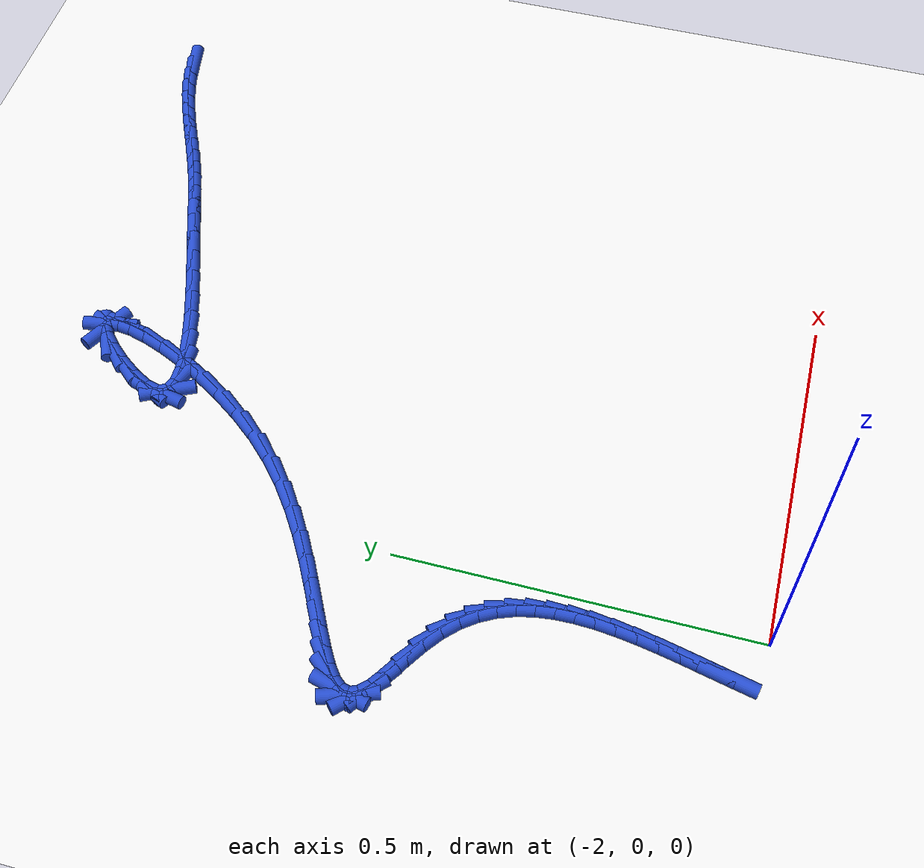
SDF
<sdf version="1.6">
 <world name="default">
  <model name="ground_plane">
   <static>1</static>
   <link name="link">
    <collision name="collision">
     <geometry><plane><normal>0 0 1</normal><size>100 100</size></plane></geometry>
     <surface><friction><ode><mu>100</mu><mu2>50</mu2></ode></friction></surface>
    </collision>
    <visual name="visual">
     <cast_shadows>0</cast_shadows>
     <geometry><plane><normal>0 0 1</normal><size>100 100</size></plane></geometry>
     <material>
      <script><uri>file://media/materials/scripts/gazebo.material</uri><name>Gazebo/WhiteGlow</name></script>
     </material>
    </visual>
   </link>
  </model>
  <model name="line">
   <link name="link_74">
    <pose>-1.215423551240702 1.0742982956432507 0.01 0 1.57 0.18803626252625102</pose>
    <collision name="collision">
     <geometry><cylinder><radius>0.01</radius><length>0.08</length></cylinder></geometry>
    </collision>
    <visual name="visual">
     <material>
      <script><name>Gazebo/Blue</name><uri>file://media/materials/scripts/gazebo.material</uri></script>
     </material>
     <geometry><cylinder><radius>0.01</radius><length>0.08</length></cylinder></geometry>
    </visual>
   </link>
   <link name="link_75">
    <pose>-1.2411226610532975 1.0694081602272765 0.01 0 1.57 0.26725021763107903</pose>
    <collision name="collision">
     <geometry><cylinder><radius>0.01</radius><length>0.08</length></cylinder></geometry>
    </collision>
    <visual name="visual">
     <material>
      <script><name>Gazebo/Blue</name><uri>file://media/materials/scripts/gazebo.material</uri></script>
     </material>
     <geometry><cylinder><radius>0.01</radius><length>0.08</length></cylinder></geometry>
    </visual>
   </link>
   <link name="link_76">
    <pose>-1.2668859089203777 1.062354183540421 0.01 0 1.57 0.3314071847718676</pose>
    <collision name="collision">
     <geometry><cylinder><radius>0.01</radius><length>0.08</length></cylinder></geometry>
    </collision>
    <visual name="visual">
     <material>
      <script><name>Gazebo/Blue</name><uri>file://media/materials/scripts/gazebo.material</uri></script>
     </material>
     <geometry><cylinder><radius>0.01</radius><length>0.08</length></cylinder></geometry>
    </visual>
   </link>
   <link name="link_77">
    <pose>-1.2926162730056359 1.0535004191103163 0.01 0 1.57 0.3794829756522754</pose>
    <collision name="collision">
     <geometry><cylinder><radius>0.01</radius><length>0.08</length></cylinder></geometry>
    </collision>
    <visual name="visual">
     <material>
      <script><name>Gazebo/Blue</name><uri>file://media/materials/scripts/gazebo.material</uri></script>
     </material>
     <geometry><cylinder><radius>0.01</radius><length>0.08</length></cylinder></geometry>
    </visual>
   </link>
   <link name="link_78">
    <pose>-1.3181961742660286 1.0432988132603842 0.01 0 1.57 0.4131915084848422</pose>
    <collision name="collision">
     <geometry><cylinder><radius>0.01</radius><length>0.08</length></cylinder></geometry>
    </collision>
    <visual name="visual">
     <material>
      <script><name>Gazebo/Blue</name><uri>file://media/materials/scripts/gazebo.material</uri></script>
     </material>
     <geometry><cylinder><radius>0.01</radius><length>0.08</length></cylinder></geometry>
    </visual>
   </link>
   <link name="link_79">
    <pose>-1.3435080336585126 1.0322013123140459 0.01 0 1.57 0.4336318480567967</pose>
    <collision name="collision">
     <geometry><cylinder><radius>0.01</radius><length>0.08</length></cylinder></geometry>
    </collision>
    <visual name="visual">
     <material>
      <script><name>Gazebo/Blue</name><uri>file://media/materials/scripts/gazebo.material</uri></script>
     </material>
     <geometry><cylinder><radius>0.01</radius><length>0.08</length></cylinder></geometry>
    </visual>
   </link>
   <link name="link_80">
    <pose>-1.368434272140044 1.0206598625947232 0.01 0 1.57 0.4411912195894931</pose>
    <collision name="collision">
     <geometry><cylinder><radius>0.01</radius><length>0.08</length></cylinder></geometry>
    </collision>
    <visual name="visual">
     <material>
      <script><name>Gazebo/Blue</name><uri>file://media/materials/scripts/gazebo.material</uri></script>
     </material>
     <geometry><cylinder><radius>0.01</radius><length>0.08</length></cylinder></geometry>
    </visual>
   </link>
   <link name="link_81">
    <pose>-1.3928573106675803 1.0091264104258382 0.01 0 1.57 0.4354461820691759</pose>
    <collision name="collision">
     <geometry><cylinder><radius>0.01</radius><length>0.08</length></cylinder></geometry>
    </collision>
    <visual name="visual">
     <material>
      <script><name>Gazebo/Blue</name><uri>file://media/materials/scripts/gazebo.material</uri></script>
     </material>
     <geometry><cylinder><radius>0.01</radius><length>0.08</length></cylinder></geometry>
    </visual>
   </link>
   <link name="link_82">
    <pose>-1.416659570198078 0.998052902130812 0.01 0 1.57 0.4153448313387863</pose>
    <collision name="collision">
     <geometry><cylinder><radius>0.01</radius><length>0.08</length></cylinder></geometry>
    </collision>
    <visual name="visual">
     <material>
      <script><name>Gazebo/Blue</name><uri>file://media/materials/scripts/gazebo.material</uri></script>
     </material>
     <geometry><cylinder><radius>0.01</radius><length>0.08</length></cylinder></geometry>
    </visual>
   </link>
   <link name="link_83">
    <pose>-1.4397403562009665 0.9878742627093712 0.01 0 1.57 0.3884635753428459</pose>
    <collision name="collision">
     <geometry><cylinder><radius>0.01</radius><length>0.08</length></cylinder></geometry>
    </collision>
    <visual name="visual">
     <material>
      <script><name>Gazebo/Blue</name><uri>file://media/materials/scripts/gazebo.material</uri></script>
     </material>
     <geometry><cylinder><radius>0.01</radius><length>0.08</length></cylinder></geometry>
    </visual>
   </link>
   <link name="link_84">
    <pose>-1.462434341952853 0.9785865216714222 0.01 0 1.57 0.36646536756991704</pose>
    <collision name="collision">
     <geometry><cylinder><radius>0.01</radius><length>0.08</length></cylinder></geometry>
    </collision>
    <visual name="visual">
     <material>
      <script><name>Gazebo/Blue</name><uri>file://media/materials/scripts/gazebo.material</uri></script>
     </material>
     <geometry><cylinder><radius>0.01</radius><length>0.08</length></cylinder></geometry>
    </visual>
   </link>
   <link name="link_85">
    <pose>-1.4855394154863828 0.9697187404509291 0.01 0 1.57 0.35209717756006437</pose>
    <collision name="collision">
     <geometry><cylinder><radius>0.01</radius><length>0.08</length></cylinder></geometry>
    </collision>
    <visual name="visual">
     <material>
      <script><name>Gazebo/Blue</name><uri>file://media/materials/scripts/gazebo.material</uri></script>
     </material>
     <geometry><cylinder><radius>0.01</radius><length>0.08</length></cylinder></geometry>
    </visual>
   </link>
   <link name="link_86">
    <pose>-1.5098759254484428 0.9607773378745577 0.01 0 1.57 0.34585140345293613</pose>
    <collision name="collision">
     <geometry><cylinder><radius>0.01</radius><length>0.08</length></cylinder></geometry>
    </collision>
    <visual name="visual">
     <material>
      <script><name>Gazebo/Blue</name><uri>file://media/materials/scripts/gazebo.material</uri></script>
     </material>
     <geometry><cylinder><radius>0.01</radius><length>0.08</length></cylinder></geometry>
    </visual>
   </link>
   <link name="link_87">
    <pose>-1.536264220485918 0.9512687327689737 0.01 0 1.57 0.3466332760400018</pose>
    <collision name="collision">
     <geometry><cylinder><radius>0.01</radius><length>0.08</length></cylinder></geometry>
    </collision>
    <visual name="visual">
     <material>
      <script><name>Gazebo/Blue</name><uri>file://media/materials/scripts/gazebo.material</uri></script>
     </material>
     <geometry><cylinder><radius>0.01</radius><length>0.08</length></cylinder></geometry>
    </visual>
   </link>
   <link name="link_88">
    <pose>-1.565524649245695 0.9406993439608429 0.01 0 1.57 0.35126762538853873</pose>
    <collision name="collision">
     <geometry><cylinder><radius>0.01</radius><length>0.08</length></cylinder></geometry>
    </collision>
    <visual name="visual">
     <material>
      <script><name>Gazebo/Blue</name><uri>file://media/materials/scripts/gazebo.material</uri></script>
     </material>
     <geometry><cylinder><radius>0.01</radius><length>0.08</length></cylinder></geometry>
    </visual>
   </link>
   <link name="link_89">
    <pose>-1.5982908010272654 0.9286916734815941 0.01 0 1.57 0.34972330098774573</pose>
    <collision name="collision">
     <geometry><cylinder><radius>0.01</radius><length>0.08</length></cylinder></geometry>
    </collision>
    <visual name="visual">
     <material>
      <script><name>Gazebo/Blue</name><uri>file://media/materials/scripts/gazebo.material</uri></script>
     </material>
     <geometry><cylinder><radius>0.01</radius><length>0.08</length></cylinder></geometry>
    </visual>
   </link>
   <link name="link_90">
    <pose>-1.6337811424553943 0.9157478150806083 0.01 0 1.57 0.3391039021439201</pose>
    <collision name="collision">
     <geometry><cylinder><radius>0.01</radius><length>0.08</length></cylinder></geometry>
    </collision>
    <visual name="visual">
     <material>
      <script><name>Gazebo/Blue</name><uri>file://media/materials/scripts/gazebo.material</uri></script>
     </material>
     <geometry><cylinder><radius>0.01</radius><length>0.08</length></cylinder></geometry>
    </visual>
   </link>
   <link name="link_91">
    <pose>-1.6705659779128599 0.9027727379258548 0.01 0 1.57 0.3188943592542334</pose>
    <collision name="collision">
     <geometry><cylinder><radius>0.01</radius><length>0.08</length></cylinder></geometry>
    </collision>
    <visual name="visual">
     <material>
      <script><name>Gazebo/Blue</name><uri>file://media/materials/scripts/gazebo.material</uri></script>
     </material>
     <geometry><cylinder><radius>0.01</radius><length>0.08</length></cylinder></geometry>
    </visual>
   </link>
   <link name="link_92">
    <pose>-1.7072122444325066 0.8906735042145273 0.01 0 1.57 0.28605823978131106</pose>
    <collision name="collision">
     <geometry><cylinder><radius>0.01</radius><length>0.08</length></cylinder></geometry>
    </collision>
    <visual name="visual">
     <material>
      <script><name>Gazebo/Blue</name><uri>file://media/materials/scripts/gazebo.material</uri></script>
     </material>
     <geometry><cylinder><radius>0.01</radius><length>0.08</length></cylinder></geometry>
    </visual>
   </link>
   <link name="link_93">
    <pose>-1.7422868790471813 0.8803571761438187 0.01 0 1.57 0.23346755738758979</pose>
    <collision name="collision">
     <geometry><cylinder><radius>0.01</radius><length>0.08</length></cylinder></geometry>
    </collision>
    <visual name="visual">
     <material>
      <script><name>Gazebo/Blue</name><uri>file://media/materials/scripts/gazebo.material</uri></script>
     </material>
     <geometry><cylinder><radius>0.01</radius><length>0.08</length></cylinder></geometry>
    </visual>
   </link>
   <link name="link_94">
    <pose>-1.7743568187897296 0.8727308159109232 0.01 0 1.57 0.14479963505662882</pose>
    <collision name="collision">
     <geometry><cylinder><radius>0.01</radius><length>0.08</length></cylinder></geometry>
    </collision>
    <visual name="visual">
     <material>
      <script><name>Gazebo/Blue</name><uri>file://media/materials/scripts/gazebo.material</uri></script>
     </material>
     <geometry><cylinder><radius>0.01</radius><length>0.08</length></cylinder></geometry>
    </visual>
   </link>
   <link name="link_95">
    <pose>-1.8019890006929957 0.8687014857130333 0.01 0 1.57 -0.021813283162416187</pose>
    <collision name="collision">
     <geometry><cylinder><radius>0.01</radius><length>0.08</length></cylinder></geometry>
    </collision>
    <visual name="visual">
     <material>
      <script><name>Gazebo/Blue</name><uri>file://media/materials/scripts/gazebo.material</uri></script>
     </material>
     <geometry><cylinder><radius>0.01</radius><length>0.08</length></cylinder></geometry>
    </visual>
   </link>
   <link name="link_96">
    <pose>-1.8237503617898263 0.8691762477473433 0.01 0 1.57 -0.38662850440929253</pose>
    <collision name="collision">
     <geometry><cylinder><radius>0.01</radius><length>0.08</length></cylinder></geometry>
    </collision>
    <visual name="visual">
     <material>
      <script><name>Gazebo/Blue</name><uri>file://media/materials/scripts/gazebo.material</uri></script>
     </material>
     <geometry><cylinder><radius>0.01</radius><length>0.08</length></cylinder></geometry>
    </visual>
   </link>
   <link name="link_97">
    <pose>-1.8382078391130656 0.8750621642110457 0.01 0 1.57 -1.1324703008249688</pose>
    <collision name="collision">
     <geometry><cylinder><radius>0.01</radius><length>0.08</length></cylinder></geometry>
    </collision>
    <visual name="visual">
     <material>
      <script><name>Gazebo/Blue</name><uri>file://media/materials/scripts/gazebo.material</uri></script>
     </material>
     <geometry><cylinder><radius>0.01</radius><length>0.08</length></cylinder></geometry>
    </visual>
   </link>
   <link name="link_98">
    <pose>-1.8439283696955597 0.8872662973013342 0.01 0 1.57 1.3521078874747121</pose>
    <collision name="collision">
     <geometry><cylinder><radius>0.01</radius><length>0.08</length></cylinder></geometry>
    </collision>
    <visual name="visual">
     <material>
      <script><name>Gazebo/Blue</name><uri>file://media/materials/scripts/gazebo.material</uri></script>
     </material>
     <geometry><cylinder><radius>0.01</radius><length>0.08</length></cylinder></geometry>
    </visual>
   </link>
   <link name="link_99">
    <pose>-1.8396474735738158 0.9065285567045817 0.01 0 1.57 1.0850120282650997</pose>
    <collision name="collision">
     <geometry><cylinder><radius>0.01</radius><length>0.08</length></cylinder></geometry>
    </collision>
    <visual name="visual">
     <material>
      <script><name>Gazebo/Blue</name><uri>file://media/materials/scripts/gazebo.material</uri></script>
     </material>
     <geometry><cylinder><radius>0.01</radius><length>0.08</length></cylinder></geometry>
    </visual>
   </link>
   <link name="link_100">
    <pose>-1.8267436530373407 0.9309682965941514 0.01 0 1.57 0.9576997090478379</pose>
    <collision name="collision">
     <geometry><cylinder><radius>0.01</radius><length>0.08</length></cylinder></geometry>
    </collision>
    <visual name="visual">
     <material>
      <script><name>Gazebo/Blue</name><uri>file://media/materials/scripts/gazebo.material</uri></script>
     </material>
     <geometry><cylinder><radius>0.01</radius><length>0.08</length></cylinder></geometry>
    </visual>
   </link>
   <link name="link_101">
    <pose>-1.8086934192413517 0.9566246647049684 0.01 0 1.57 0.8603446648153027</pose>
    <collision name="collision">
     <geometry><cylinder><radius>0.01</radius><length>0.08</length></cylinder></geometry>
    </collision>
    <visual name="visual">
     <material>
      <script><name>Gazebo/Blue</name><uri>file://media/materials/scripts/gazebo.material</uri></script>
     </material>
     <geometry><cylinder><radius>0.01</radius><length>0.08</length></cylinder></geometry>
    </visual>
   </link>
   <link name="link_102">
    <pose>-1.7890310464976582 0.9794795357583803 0.01 0 1.57 0.7349609134541822</pose>
    <collision name="collision">
     <geometry><cylinder><radius>0.01</radius><length>0.08</length></cylinder></geometry>
    </collision>
    <visual name="visual">
     <material>
      <script><name>Gazebo/Blue</name><uri>file://media/materials/scripts/gazebo.material</uri></script>
     </material>
     <geometry><cylinder><radius>0.01</radius><length>0.08</length></cylinder></geometry>
    </visual>
   </link>
   <link name="link_103">
    <pose>-1.7712908091180721 0.9955147844757344 0.01 0 1.57 0.4326838483459406</pose>
    <collision name="collision">
     <geometry><cylinder><radius>0.01</radius><length>0.08</length></cylinder></geometry>
    </collision>
    <visual name="visual">
     <material>
      <script><name>Gazebo/Blue</name><uri>file://media/materials/scripts/gazebo.material</uri></script>
     </material>
     <geometry><cylinder><radius>0.01</radius><length>0.08</length></cylinder></geometry>
    </visual>
   </link>
   <link name="link_104">
    <pose>-1.7584916108907214 1.0014263934914018 0.01 0 1.57 -0.4964143986069874</pose>
    <collision name="collision">
     <geometry><cylinder><radius>0.01</radius><length>0.08</length></cylinder></geometry>
    </collision>
    <visual name="visual">
     <material>
      <script><name>Gazebo/Blue</name><uri>file://media/materials/scripts/gazebo.material</uri></script>
     </material>
     <geometry><cylinder><radius>0.01</radius><length>0.08</length></cylinder></geometry>
    </visual>
   </link>
   <link name="link_105">
    <pose>-1.7511125863161248 0.997429501585084 0.01 0 1.57 -1.3933726836793747</pose>
    <collision name="collision">
     <geometry><cylinder><radius>0.01</radius><length>0.08</length></cylinder></geometry>
    </collision>
    <visual name="visual">
     <material>
      <script><name>Gazebo/Blue</name><uri>file://media/materials/scripts/gazebo.material</uri></script>
     </material>
     <geometry><cylinder><radius>0.01</radius><length>0.08</length></cylinder></geometry>
    </visual>
   </link>
   <link name="link_106">
    <pose>-1.7488518475459829 0.9848214480386709 0.01 0 1.57 1.4432177730281062</pose>
    <collision name="collision">
     <geometry><cylinder><radius>0.01</radius><length>0.08</length></cylinder></geometry>
    </collision>
    <visual name="visual">
     <material>
      <script><name>Gazebo/Blue</name><uri>file://media/materials/scripts/gazebo.material</uri></script>
     </material>
     <geometry><cylinder><radius>0.01</radius><length>0.08</length></cylinder></geometry>
    </visual>
   </link>
   <link name="link_107">
    <pose>-1.7514072934099507 0.964899867717428 0.01 0 1.57 1.30469954961798</pose>
    <collision name="collision">
     <geometry><cylinder><radius>0.01</radius><length>0.08</length></cylinder></geometry>
    </collision>
    <visual name="visual">
     <material>
      <script><name>Gazebo/Blue</name><uri>file://media/materials/scripts/gazebo.material</uri></script>
     </material>
     <geometry><cylinder><radius>0.01</radius><length>0.08</length></cylinder></geometry>
    </visual>
   </link>
   <link name="link_108">
    <pose>-1.7584768227376835 0.9389623954866214 0.01 0 1.57 1.2181708820736072</pose>
    <collision name="collision">
     <geometry><cylinder><radius>0.01</radius><length>0.08</length></cylinder></geometry>
    </collision>
    <visual name="visual">
     <material>
      <script><name>Gazebo/Blue</name><uri>file://media/materials/scripts/gazebo.material</uri></script>
     </material>
     <geometry><cylinder><radius>0.01</radius><length>0.08</length></cylinder></geometry>
    </visual>
   </link>
   <link name="link_109">
    <pose>-1.7697583343588372 0.9083066662115163 0.01 0 1.57 1.1514368071254084</pose>
    <collision name="collision">
     <geometry><cylinder><radius>0.01</radius><length>0.08</length></cylinder></geometry>
    </collision>
    <visual name="visual">
     <material>
      <script><name>Gazebo/Blue</name><uri>file://media/materials/scripts/gazebo.material</uri></script>
     </material>
     <geometry><cylinder><radius>0.01</radius><length>0.08</length></cylinder></geometry>
    </visual>
   </link>
   <link name="link_110">
    <pose>-1.7849497271030679 0.8742303147573791 0.01 0 1.57 1.0918095744156475</pose>
    <collision name="collision">
     <geometry><cylinder><radius>0.01</radius><length>0.08</length></cylinder></geometry>
    </collision>
    <visual name="visual">
     <material>
      <script><name>Gazebo/Blue</name><uri>file://media/materials/scripts/gazebo.material</uri></script>
     </material>
     <geometry><cylinder><radius>0.01</radius><length>0.08</length></cylinder></geometry>
    </visual>
   </link>
   <link name="link_111">
    <pose>-1.8037488998000297 0.8380309759894752 0.01 0 1.57 1.0325635101327053</pose>
    <collision name="collision">
     <geometry><cylinder><radius>0.01</radius><length>0.08</length></cylinder></geometry>
    </collision>
    <visual name="visual">
     <material>
      <script><name>Gazebo/Blue</name><uri>file://media/materials/scripts/gazebo.material</uri></script>
     </material>
     <geometry><cylinder><radius>0.01</radius><length>0.08</length></cylinder></geometry>
    </visual>
   </link>
   <link name="link_112">
    <pose>-1.82585375127938 0.8010062847730706 0.01 0 1.57 0.9689057505931264</pose>
    <collision name="collision">
     <geometry><cylinder><radius>0.01</radius><length>0.08</length></cylinder></geometry>
    </collision>
    <visual name="visual">
     <material>
      <script><name>Gazebo/Blue</name><uri>file://media/materials/scripts/gazebo.material</uri></script>
     </material>
     <geometry><cylinder><radius>0.01</radius><length>0.08</length></cylinder></geometry>
    </visual>
   </link>
   <link name="link_113">
    <pose>-1.8509621803707728 0.7644538759734308 0.01 0 1.57 0.8963374740546965</pose>
    <collision name="collision">
     <geometry><cylinder><radius>0.01</radius><length>0.08</length></cylinder></geometry>
    </collision>
    <visual name="visual">
     <material>
      <script><name>Gazebo/Blue</name><uri>file://media/materials/scripts/gazebo.material</uri></script>
     </material>
     <geometry><cylinder><radius>0.01</radius><length>0.08</length></cylinder></geometry>
    </visual>
   </link>
   <link name="link_114">
    <pose>-1.8787720859038641 0.7296713844558219 0.01 0 1.57 0.8106121923313575</pose>
    <collision name="collision">
     <geometry><cylinder><radius>0.01</radius><length>0.08</length></cylinder></geometry>
    </collision>
    <visual name="visual">
     <material>
      <script><name>Gazebo/Blue</name><uri>file://media/materials/scripts/gazebo.material</uri></script>
     </material>
     <geometry><cylinder><radius>0.01</radius><length>0.08</length></cylinder></geometry>
    </visual>
   </link>
   <link name="link_115">
    <pose>-1.9089690736059144 0.6979118931666879 0.01 0 1.57 0.7236162861241598</pose>
    <collision name="collision">
     <geometry><cylinder><radius>0.01</radius><length>0.08</length></cylinder></geometry>
    </collision>
    <visual name="visual">
     <material>
      <script><name>Gazebo/Blue</name><uri>file://media/materials/scripts/gazebo.material</uri></script>
     </material>
     <geometry><cylinder><radius>0.01</radius><length>0.08</length></cylinder></geometry>
    </visual>
   </link>
   <link name="link_116">
    <pose>-1.9410110437136066 0.6696032485738977 0.01 0 1.57 0.649259557092033</pose>
    <collision name="collision">
     <geometry><cylinder><radius>0.01</radius><length>0.08</length></cylinder></geometry>
    </collision>
    <visual name="visual">
     <material>
      <script><name>Gazebo/Blue</name><uri>file://media/materials/scripts/gazebo.material</uri></script>
     </material>
     <geometry><cylinder><radius>0.01</radius><length>0.08</length></cylinder></geometry>
    </visual>
   </link>
   <link name="link_117">
    <pose>-1.9741551252367362 0.6444456741975644 0.01 0 1.57 0.5880077946450946</pose>
    <collision name="collision">
     <geometry><cylinder><radius>0.01</radius><length>0.08</length></cylinder></geometry>
    </collision>
    <visual name="visual">
     <material>
      <script><name>Gazebo/Blue</name><uri>file://media/materials/scripts/gazebo.material</uri></script>
     </material>
     <geometry><cylinder><radius>0.01</radius><length>0.08</length></cylinder></geometry>
    </visual>
   </link>
   <link name="link_118">
    <pose>-2.007651567710752 0.6221144613825852 0.01 0 1.57 0.5397556337187839</pose>
    <collision name="collision">
     <geometry><cylinder><radius>0.01</radius><length>0.08</length></cylinder></geometry>
    </collision>
    <visual name="visual">
     <material>
      <script><name>Gazebo/Blue</name><uri>file://media/materials/scripts/gazebo.material</uri></script>
     </material>
     <geometry><cylinder><radius>0.01</radius><length>0.08</length></cylinder></geometry>
    </visual>
   </link>
   <link name="link_119">
    <pose>-2.040750620671098 0.6022849014738586 0.01 0 1.57 0.5047409979261124</pose>
    <collision name="collision">
     <geometry><cylinder><radius>0.01</radius><length>0.08</length></cylinder></geometry>
    </collision>
    <visual name="visual">
     <material>
      <script><name>Gazebo/Blue</name><uri>file://media/materials/scripts/gazebo.material</uri></script>
     </material>
     <geometry><cylinder><radius>0.01</radius><length>0.08</length></cylinder></geometry>
    </visual>
   </link>
   <link name="link_120">
    <pose>-2.07270253365322 0.5846322858162826 0.01 0 1.57 0.4840074475036305</pose>
    <collision name="collision">
     <geometry><cylinder><radius>0.01</radius><length>0.08</length></cylinder></geometry>
    </collision>
    <visual name="visual">
     <material>
      <script><name>Gazebo/Blue</name><uri>file://media/materials/scripts/gazebo.material</uri></script>
     </material>
     <geometry><cylinder><radius>0.01</radius><length>0.08</length></cylinder></geometry>
    </visual>
   </link>
   <link name="link_121">
    <pose>-2.1027575561925635 0.5688319057547555 0.01 0 1.57 0.48010770753922904</pose>
    <collision name="collision">
     <geometry><cylinder><radius>0.01</radius><length>0.08</length></cylinder></geometry>
    </collision>
    <visual name="visual">
     <material>
      <script><name>Gazebo/Blue</name><uri>file://media/materials/scripts/gazebo.material</uri></script>
     </material>
     <geometry><cylinder><radius>0.01</radius><length>0.08</length></cylinder></geometry>
    </visual>
   </link>
   <link name="link_122">
    <pose>-2.1301659378245748 0.5545590526341752 0.01 0 1.57 0.49846639340566185</pose>
    <collision name="collision">
     <geometry><cylinder><radius>0.01</radius><length>0.08</length></cylinder></geometry>
    </collision>
    <visual name="visual">
     <material>
      <script><name>Gazebo/Blue</name><uri>file://media/materials/scripts/gazebo.material</uri></script>
     </material>
     <geometry><cylinder><radius>0.01</radius><length>0.08</length></cylinder></geometry>
    </visual>
   </link>
   <link name="link_123">
    <pose>-2.154177928084699 0.5414890177994396 0.01 0 1.57 0.5504414639110653</pose>
    <collision name="collision">
     <geometry><cylinder><radius>0.01</radius><length>0.08</length></cylinder></geometry>
    </collision>
    <visual name="visual">
     <material>
      <script><name>Gazebo/Blue</name><uri>file://media/materials/scripts/gazebo.material</uri></script>
     </material>
     <geometry><cylinder><radius>0.01</radius><length>0.08</length></cylinder></geometry>
    </visual>
   </link>
   <link name="link_124">
    <pose>-2.1740437765083827 0.5292970925954473 0.01 0 1.57 0.6608443948115567</pose>
    <collision name="collision">
     <geometry><cylinder><radius>0.01</radius><length>0.08</length></cylinder></geometry>
    </collision>
    <visual name="visual">
     <material>
      <script><name>Gazebo/Blue</name><uri>file://media/materials/scripts/gazebo.material</uri></script>
     </material>
     <geometry><cylinder><radius>0.01</radius><length>0.08</length></cylinder></geometry>
    </visual>
   </link>
   <link name="link_125">
    <pose>-2.189013732631071 0.5176585683670959 0.01 0 1.57 0.8856447750102029</pose>
    <collision name="collision">
     <geometry><cylinder><radius>0.01</radius><length>0.08</length></cylinder></geometry>
    </collision>
    <visual name="visual">
     <material>
      <script><name>Gazebo/Blue</name><uri>file://media/materials/scripts/gazebo.material</uri></script>
     </material>
     <geometry><cylinder><radius>0.01</radius><length>0.08</length></cylinder></geometry>
    </visual>
   </link>
   <link name="link_126">
    <pose>-2.1983380459882094 0.5062487364592835 0.01 0 1.57 1.3215312271879331</pose>
    <collision name="collision">
     <geometry><cylinder><radius>0.01</radius><length>0.08</length></cylinder></geometry>
    </collision>
    <visual name="visual">
     <material>
      <script><name>Gazebo/Blue</name><uri>file://media/materials/scripts/gazebo.material</uri></script>
     </material>
     <geometry><cylinder><radius>0.01</radius><length>0.08</length></cylinder></geometry>
    </visual>
   </link>
   <link name="link_127">
    <pose>-2.201266966115244 0.4947428882169083 0.01 0 1.57 -1.230993465844697</pose>
    <collision name="collision">
     <geometry><cylinder><radius>0.01</radius><length>0.08</length></cylinder></geometry>
    </collision>
    <visual name="visual">
     <material>
      <script><name>Gazebo/Blue</name><uri>file://media/materials/scripts/gazebo.material</uri></script>
     </material>
     <geometry><cylinder><radius>0.01</radius><length>0.08</length></cylinder></geometry>
    </visual>
   </link>
   <link name="link_128">
    <pose>-2.1970507425476207 0.4828163149848683 0.01 0 1.57 -0.809018303828697</pose>
    <collision name="collision">
     <geometry><cylinder><radius>0.01</radius><length>0.08</length></cylinder></geometry>
    </collision>
    <visual name="visual">
     <material>
      <script><name>Gazebo/Blue</name><uri>file://media/materials/scripts/gazebo.material</uri></script>
     </material>
     <geometry><cylinder><radius>0.01</radius><length>0.08</length></cylinder></geometry>
    </visual>
   </link>
   <link name="link_129">
    <pose>-2.184964755646652 0.4701454592109732 0.01 0 1.57 -0.6171636495432758</pose>
    <collision name="collision">
     <geometry><cylinder><radius>0.01</radius><length>0.08</length></cylinder></geometry>
    </collision>
    <visual name="visual">
     <material>
      <script><name>Gazebo/Blue</name><uri>file://media/materials/scripts/gazebo.material</uri></script>
     </material>
     <geometry><cylinder><radius>0.01</radius><length>0.08</length></cylinder></geometry>
    </visual>
   </link>
   <link name="link_130">
    <pose>-2.1656956374428953 0.45647140490769766 0.01 0 1.57 -0.5606794496049395</pose>
    <collision name="collision">
     <geometry><cylinder><radius>0.01</radius><length>0.08</length></cylinder></geometry>
    </collision>
    <visual name="visual">
     <material>
      <script><name>Gazebo/Blue</name><uri>file://media/materials/scripts/gazebo.material</uri></script>
     </material>
     <geometry><cylinder><radius>0.01</radius><length>0.08</length></cylinder></geometry>
    </visual>
   </link>
   <link name="link_131">
    <pose>-2.1420636535091675 0.44163296593513995 0.01 0 1.57 -0.5737753632507465</pose>
    <collision name="collision">
     <geometry><cylinder><radius>0.01</radius><length>0.08</length></cylinder></geometry>
    </collision>
    <visual name="visual">
     <material>
      <script><name>Gazebo/Blue</name><uri>file://media/materials/scripts/gazebo.material</uri></script>
     </material>
     <geometry><cylinder><radius>0.01</radius><length>0.08</length></cylinder></geometry>
    </visual>
   </link>
   <link name="link_132">
    <pose>-2.1170664599672584 0.4254770814246679 0.01 0 1.57 -0.6462842681636806</pose>
    <collision name="collision">
     <geometry><cylinder><radius>0.01</radius><length>0.08</length></cylinder></geometry>
    </collision>
    <visual name="visual">
     <material>
      <script><name>Gazebo/Blue</name><uri>file://media/materials/scripts/gazebo.material</uri></script>
     </material>
     <geometry><cylinder><radius>0.01</radius><length>0.08</length></cylinder></geometry>
    </visual>
   </link>
   <link name="link_133">
    <pose>-2.0937004995988224 0.4078507871042317 0.01 0 1.57 -0.776543729929559</pose>
    <collision name="collision">
     <geometry><cylinder><radius>0.01</radius><length>0.08</length></cylinder></geometry>
    </collision>
    <visual name="visual">
     <material>
      <script><name>Gazebo/Blue</name><uri>file://media/materials/scripts/gazebo.material</uri></script>
     </material>
     <geometry><cylinder><radius>0.01</radius><length>0.08</length></cylinder></geometry>
    </visual>
   </link>
   <link name="link_134">
    <pose>-2.0741710025545954 0.3886641088177586 0.01 0 1.57 -0.9228850027273331</pose>
    <collision name="collision">
     <geometry><cylinder><radius>0.01</radius><length>0.08</length></cylinder></geometry>
    </collision>
    <visual name="visual">
     <material>
      <script><name>Gazebo/Blue</name><uri>file://media/materials/scripts/gazebo.material</uri></script>
     </material>
     <geometry><cylinder><radius>0.01</radius><length>0.08</length></cylinder></geometry>
    </visual>
   </link>
   <link name="link_135">
    <pose>-2.0585289731946412 0.36799857489421506 0.01 0 1.57 -1.069763949105044</pose>
    <collision name="collision">
     <geometry><cylinder><radius>0.01</radius><length>0.08</length></cylinder></geometry>
    </collision>
    <visual name="visual">
     <material>
      <script><name>Gazebo/Blue</name><uri>file://media/materials/scripts/gazebo.material</uri></script>
     </material>
     <geometry><cylinder><radius>0.01</radius><length>0.08</length></cylinder></geometry>
    </visual>
   </link>
   <link name="link_136">
    <pose>-2.0464622204750347 0.3459646284191404 0.01 0 1.57 -1.2094235532790518</pose>
    <collision name="collision">
     <geometry><cylinder><radius>0.01</radius><length>0.08</length></cylinder></geometry>
    </collision>
    <visual name="visual">
     <material>
      <script><name>Gazebo/Blue</name><uri>file://media/materials/scripts/gazebo.material</uri></script>
     </material>
     <geometry><cylinder><radius>0.01</radius><length>0.08</length></cylinder></geometry>
    </visual>
   </link>
   <link name="link_137">
    <pose>-2.0376585533518488 0.3226727124780733 0.01 0 1.57 -1.335742505822454</pose>
    <collision name="collision">
     <geometry><cylinder><radius>0.01</radius><length>0.08</length></cylinder></geometry>
    </collision>
    <visual name="visual">
     <material>
      <script><name>Gazebo/Blue</name><uri>file://media/materials/scripts/gazebo.material</uri></script>
     </material>
     <geometry><cylinder><radius>0.01</radius><length>0.08</length></cylinder></geometry>
    </visual>
   </link>
   <link name="link_138">
    <pose>-2.0318057807811596 0.29823327015655293 0.01 0 1.57 -1.445301250973863</pose>
    <collision name="collision">
     <geometry><cylinder><radius>0.01</radius><length>0.08</length></cylinder></geometry>
    </collision>
    <visual name="visual">
     <material>
      <script><name>Gazebo/Blue</name><uri>file://media/materials/scripts/gazebo.material</uri></script>
     </material>
     <geometry><cylinder><radius>0.01</radius><length>0.08</length></cylinder></geometry>
    </visual>
   </link>
   <link name="link_139">
    <pose>-2.0285917117190397 0.272756744540118 0.01 0 1.57 -1.5371934431275767</pose>
    <collision name="collision">
     <geometry><cylinder><radius>0.01</radius><length>0.08</length></cylinder></geometry>
    </collision>
    <visual name="visual">
     <material>
      <script><name>Gazebo/Blue</name><uri>file://media/materials/scripts/gazebo.material</uri></script>
     </material>
     <geometry><cylinder><radius>0.01</radius><length>0.08</length></cylinder></geometry>
    </visual>
   </link>
   <link name="link_140">
    <pose>-2.027704155121564 0.24635357871430802 0.01 0 1.57 1.5294242389757498</pose>
    <collision name="collision">
     <geometry><cylinder><radius>0.01</radius><length>0.08</length></cylinder></geometry>
    </collision>
    <visual name="visual">
     <material>
      <script><name>Gazebo/Blue</name><uri>file://media/materials/scripts/gazebo.material</uri></script>
     </material>
     <geometry><cylinder><radius>0.01</radius><length>0.08</length></cylinder></geometry>
    </visual>
   </link>
   <link name="link_141">
    <pose>-2.028830919944807 0.2191342157646609 0.01 0 1.57 1.4698378461460921</pose>
    <collision name="collision">
     <geometry><cylinder><radius>0.01</radius><length>0.08</length></cylinder></geometry>
    </collision>
    <visual name="visual">
     <material>
      <script><name>Gazebo/Blue</name><uri>file://media/materials/scripts/gazebo.material</uri></script>
     </material>
     <geometry><cylinder><radius>0.01</radius><length>0.08</length></cylinder></geometry>
    </visual>
   </link>
   <link name="link_142">
    <pose>-2.031659815144843 0.19120909877671627 0.01 0 1.57 1.4239380418772272</pose>
    <collision name="collision">
     <geometry><cylinder><radius>0.01</radius><length>0.08</length></cylinder></geometry>
    </collision>
    <visual name="visual">
     <material>
      <script><name>Gazebo/Blue</name><uri>file://media/materials/scripts/gazebo.material</uri></script>
     </material>
     <geometry><cylinder><radius>0.01</radius><length>0.08</length></cylinder></geometry>
    </visual>
   </link>
   <link name="link_143">
    <pose>-2.035878649677745 0.16268867083601277 0.01 0 1.57 1.3901789310792487</pose>
    <collision name="collision">
     <geometry><cylinder><radius>0.01</radius><length>0.08</length></cylinder></geometry>
    </collision>
    <visual name="visual">
     <material>
      <script><name>Gazebo/Blue</name><uri>file://media/materials/scripts/gazebo.material</uri></script>
     </material>
     <geometry><cylinder><radius>0.01</radius><length>0.08</length></cylinder></geometry>
    </visual>
   </link>
   <link name="link_144">
    <pose>-2.041175232499588 0.1336833750280895 0.01 0 1.57 1.3673144455086448</pose>
    <collision name="collision">
     <geometry><cylinder><radius>0.01</radius><length>0.08</length></cylinder></geometry>
    </collision>
    <visual name="visual">
     <material>
      <script><name>Gazebo/Blue</name><uri>file://media/materials/scripts/gazebo.material</uri></script>
     </material>
     <geometry><cylinder><radius>0.01</radius><length>0.08</length></cylinder></geometry>
    </visual>
   </link>
   <link name="link_145">
    <pose>-2.047237372566446 0.1043036544384853 0.01 0 1.57 1.354442572724489</pose>
    <collision name="collision">
     <geometry><cylinder><radius>0.01</radius><length>0.08</length></cylinder></geometry>
    </collision>
    <visual name="visual">
     <material>
      <script><name>Gazebo/Blue</name><uri>file://media/materials/scripts/gazebo.material</uri></script>
     </material>
     <geometry><cylinder><radius>0.01</radius><length>0.08</length></cylinder></geometry>
    </visual>
   </link>
   <link name="link_146">
    <pose>-2.053752878834395 0.07465995215273916 0.01 0 1.57 1.351006017645633</pose>
    <collision name="collision">
     <geometry><cylinder><radius>0.01</radius><length>0.08</length></cylinder></geometry>
    </collision>
    <visual name="visual">
     <material>
      <script><name>Gazebo/Blue</name><uri>file://media/materials/scripts/gazebo.material</uri></script>
     </material>
     <geometry><cylinder><radius>0.01</radius><length>0.08</length></cylinder></geometry>
    </visual>
   </link>
   <link name="link_147">
    <pose>-2.060409560259506 0.04486271125639 0.01 0 1.57 1.3567792946540143</pose>
    <collision name="collision">
     <geometry><cylinder><radius>0.01</radius><length>0.08</length></cylinder></geometry>
    </collision>
    <visual name="visual">
     <material>
      <script><name>Gazebo/Blue</name><uri>file://media/materials/scripts/gazebo.material</uri></script>
     </material>
     <geometry><cylinder><radius>0.01</radius><length>0.08</length></cylinder></geometry>
    </visual>
   </link>
  </model>
 </world>
</sdf>
